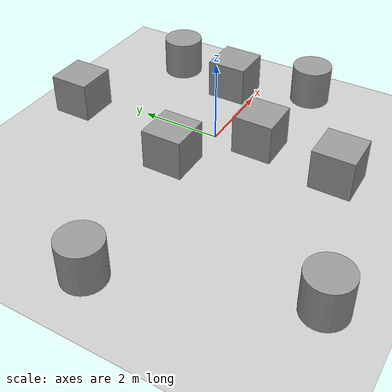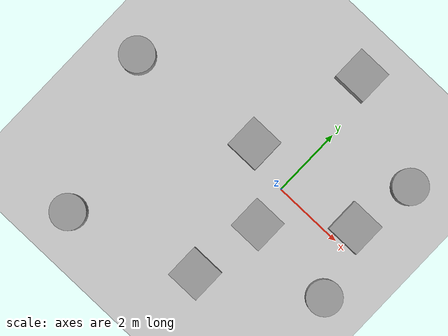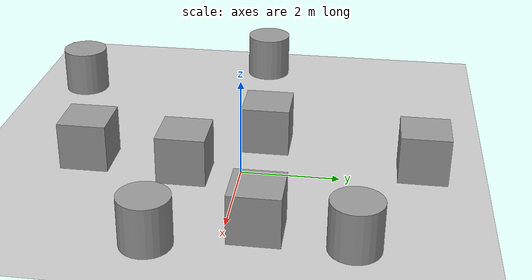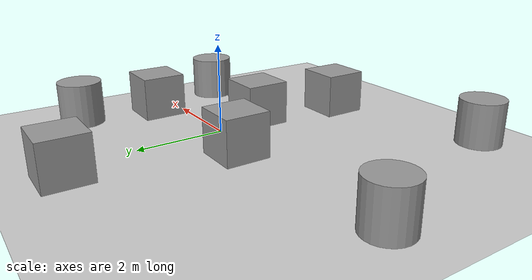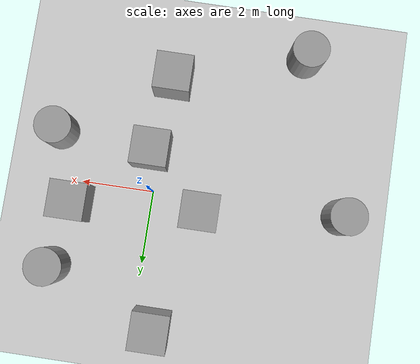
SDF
<sdf version="1.7">
 <world name="default">
  <light name="sun" type="directional">
   <pose>0 0 10 0 -0 0</pose>
   <diffuse>0.8 0.8 0.8 1</diffuse>
   <specular>0.2 0.2 0.2 1</specular>
   <attenuation>
    <range>1000</range>
    <constant>0.9</constant>
    <linear>0.01</linear>
    <quadratic>0.001</quadratic>
   </attenuation>
   <direction>-0.5 0.1 -0.9</direction>
   <spot><inner_angle>0</inner_angle><outer_angle>0</outer_angle><falloff>0</falloff></spot>
  </light>
  <model name="ground_plane">
   <static>1</static>
   <link name="link">
    <collision name="collision">
     <geometry><plane><normal>0 0 1</normal><size>100 100</size></plane></geometry>
     <surface><friction><ode><mu>100</mu><mu2>50</mu2></ode></friction></surface>
    </collision>
    <visual name="visual">
     <cast_shadows>0</cast_shadows>
     <geometry><plane><normal>0 0 1</normal><size>100 100</size></plane></geometry>
     <material>
      <script><uri>file://media/materials/scripts/gazebo.material</uri><name>Gazebo/Grey</name></script>
     </material>
    </visual>
   </link>
  </model>
  <gravity>0 0 -9.8</gravity>
  <magnetic_field>6e-06 2.3e-05 -4.2e-05</magnetic_field>
  <atmosphere type="adiabatic"/>
  <physics type="ode">
   <max_step_size>0.001</max_step_size>
   <real_time_factor>1</real_time_factor>
   <real_time_update_rate>1000</real_time_update_rate>
  </physics>
  <scene><ambient>0.4 0.4 0.4 1</ambient><background>0.7 0.7 0.7 1</background><shadows>1</shadows></scene>
  <audio><device>default</device></audio>
  <spherical_coordinates>
   <surface_model>EARTH_WGS84</surface_model>
   <latitude_deg>0</latitude_deg>
   <longitude_deg>0</longitude_deg>
   <elevation>0</elevation>
   <heading_deg>0</heading_deg>
  </spherical_coordinates>
  <model name="unit_box">
   <pose>-1.35274 0.383272 0.499995 -1e-05 -0 -0</pose>
   <link name="link">
    <inertial>
     <mass>1</mass>
     <inertia>
      <ixx>0.166667</ixx>
      <ixy>0</ixy>
      <ixz>0</ixz>
      <iyy>0.166667</iyy>
      <iyz>0</iyz>
      <izz>0.166667</izz>
     </inertia>
    </inertial>
    <collision name="collision"><geometry><box><size>1 1 1</size></box></geometry></collision>
    <visual name="visual">
     <geometry><box><size>1 1 1</size></box></geometry>
     <material>
      <script><name>Gazebo/Grey</name><uri>file://media/materials/scripts/gazebo.material</uri></script>
     </material>
    </visual>
   </link>
  </model>
  <model name="unit_box_0">
   <pose>-0.525855 3.64827 0.499995 0 1e-05 0</pose>
   <link name="link">
    <inertial>
     <mass>1</mass>
     <inertia>
      <ixx>0.166667</ixx>
      <ixy>0</ixy>
      <ixz>0</ixz>
      <iyy>0.166667</iyy>
      <iyz>0</iyz>
      <izz>0.166667</izz>
     </inertia>
    </inertial>
    <collision name="collision"><geometry><box><size>1 1 1</size></box></geometry></collision>
    <visual name="visual">
     <geometry><box><size>1 1 1</size></box></geometry>
     <material>
      <script><name>Gazebo/Grey</name><uri>file://media/materials/scripts/gazebo.material</uri></script>
     </material>
    </visual>
   </link>
  </model>
  <model name="unit_cylinder">
   <pose>2.42829 2.39567 0.499998 3e-06 -4e-06 0</pose>
   <link name="link">
    <inertial>
     <mass>1</mass>
     <inertia><ixx>0.145833</ixx><ixy>0</ixy><ixz>0</ixz><iyy>0.145833</iyy><iyz>0</iyz><izz>0.125</izz></inertia>
    </inertial>
    <collision name="collision">
     <geometry><cylinder><radius>0.5</radius><length>1</length></cylinder></geometry>
    </collision>
    <visual name="visual">
     <geometry><cylinder><radius>0.5</radius><length>1</length></cylinder></geometry>
     <material>
      <script><name>Gazebo/Grey</name><uri>file://media/materials/scripts/gazebo.material</uri></script>
     </material>
    </visual>
   </link>
  </model>
  <model name="unit_cylinder_0">
   <pose>2.79955 -1.30089 0.499992 -3e-06 4e-06 0</pose>
   <link name="link">
    <inertial>
     <mass>1</mass>
     <inertia><ixx>0.145833</ixx><ixy>0</ixy><ixz>0</ixz><iyy>0.145833</iyy><iyz>0</iyz><izz>0.125</izz></inertia>
    </inertial>
    <collision name="collision">
     <geometry><cylinder><radius>0.5</radius><length>1</length></cylinder></geometry>
    </collision>
    <visual name="visual">
     <geometry><cylinder><radius>0.5</radius><length>1</length></cylinder></geometry>
     <material>
      <script><name>Gazebo/Grey</name><uri>file://media/materials/scripts/gazebo.material</uri></script>
     </material>
    </visual>
   </link>
  </model>
  <model name="unit_box_1">
   <pose>2.11972 0.605607 0.499995 -1e-05 -0 -0</pose>
   <link name="link">
    <inertial>
     <mass>1</mass>
     <inertia>
      <ixx>0.166667</ixx>
      <ixy>0</ixy>
      <ixz>0</ixz>
      <iyy>0.166667</iyy>
      <iyz>0</iyz>
      <izz>0.166667</izz>
     </inertia>
    </inertial>
    <collision name="collision"><geometry><box><size>1 1 1</size></box></geometry></collision>
    <visual name="visual">
     <geometry><box><size>1 1 1</size></box></geometry>
     <material>
      <script><name>Gazebo/Grey</name><uri>file://media/materials/scripts/gazebo.material</uri></script>
     </material>
    </visual>
   </link>
  </model>
  <model name="unit_box_2">
   <pose>0.186322 -1.10975 0.499995 0 1e-05 0</pose>
   <link name="link">
    <inertial>
     <mass>1</mass>
     <inertia>
      <ixx>0.166667</ixx>
      <ixy>0</ixy>
      <ixz>0</ixz>
      <iyy>0.166667</iyy>
      <iyz>0</iyz>
      <izz>0.166667</izz>
     </inertia>
    </inertial>
    <collision name="collision"><geometry><box><size>1 1 1</size></box></geometry></collision>
    <visual name="visual">
     <geometry><box><size>1 1 1</size></box></geometry>
     <material>
      <script><name>Gazebo/Grey</name><uri>file://media/materials/scripts/gazebo.material</uri></script>
     </material>
    </visual>
   </link>
  </model>
  <model name="unit_cylinder_1">
   <pose>-5.21974 -0.051686 0.499993 -3e-06 -3e-06 0</pose>
   <link name="link">
    <inertial>
     <mass>1</mass>
     <inertia><ixx>0.145833</ixx><ixy>0</ixy><ixz>0</ixz><iyy>0.145833</iyy><iyz>0</iyz><izz>0.125</izz></inertia>
    </inertial>
    <collision name="collision">
     <geometry><cylinder><radius>0.5</radius><length>1</length></cylinder></geometry>
    </collision>
    <visual name="visual">
     <geometry><cylinder><radius>0.5</radius><length>1</length></cylinder></geometry>
     <material>
      <script><name>Gazebo/Grey</name><uri>file://media/materials/scripts/gazebo.material</uri></script>
     </material>
    </visual>
   </link>
  </model>
  <model name="unit_cylinder_2">
   <pose>-3.67802 -4.32686 0.499997 3e-06 4e-06 -0</pose>
   <link name="link">
    <inertial>
     <mass>1</mass>
     <inertia><ixx>0.145833</ixx><ixy>0</ixy><ixz>0</ixz><iyy>0.145833</iyy><iyz>0</iyz><izz>0.125</izz></inertia>
    </inertial>
    <collision name="collision">
     <geometry><cylinder><radius>0.5</radius><length>1</length></cylinder></geometry>
    </collision>
    <visual name="visual">
     <geometry><cylinder><radius>0.5</radius><length>1</length></cylinder></geometry>
     <material>
      <script><name>Gazebo/Grey</name><uri>file://media/materials/scripts/gazebo.material</uri></script>
     </material>
    </visual>
   </link>
  </model>
  <model name="unit_box_3">
   <pose>-0.116899 -3.18906 0.499995 -1e-05 -0 0</pose>
   <link name="link">
    <inertial>
     <mass>1</mass>
     <inertia>
      <ixx>0.166667</ixx>
      <ixy>0</ixy>
      <ixz>0</ixz>
      <iyy>0.166667</iyy>
      <iyz>0</iyz>
      <izz>0.166667</izz>
     </inertia>
    </inertial>
    <collision name="collision"><geometry><box><size>1 1 1</size></box></geometry></collision>
    <visual name="visual">
     <geometry><box><size>1 1 1</size></box></geometry>
     <material>
      <script><name>Gazebo/Grey</name><uri>file://media/materials/scripts/gazebo.material</uri></script>
     </material>
    </visual>
   </link>
  </model>
 </world>
</sdf>
